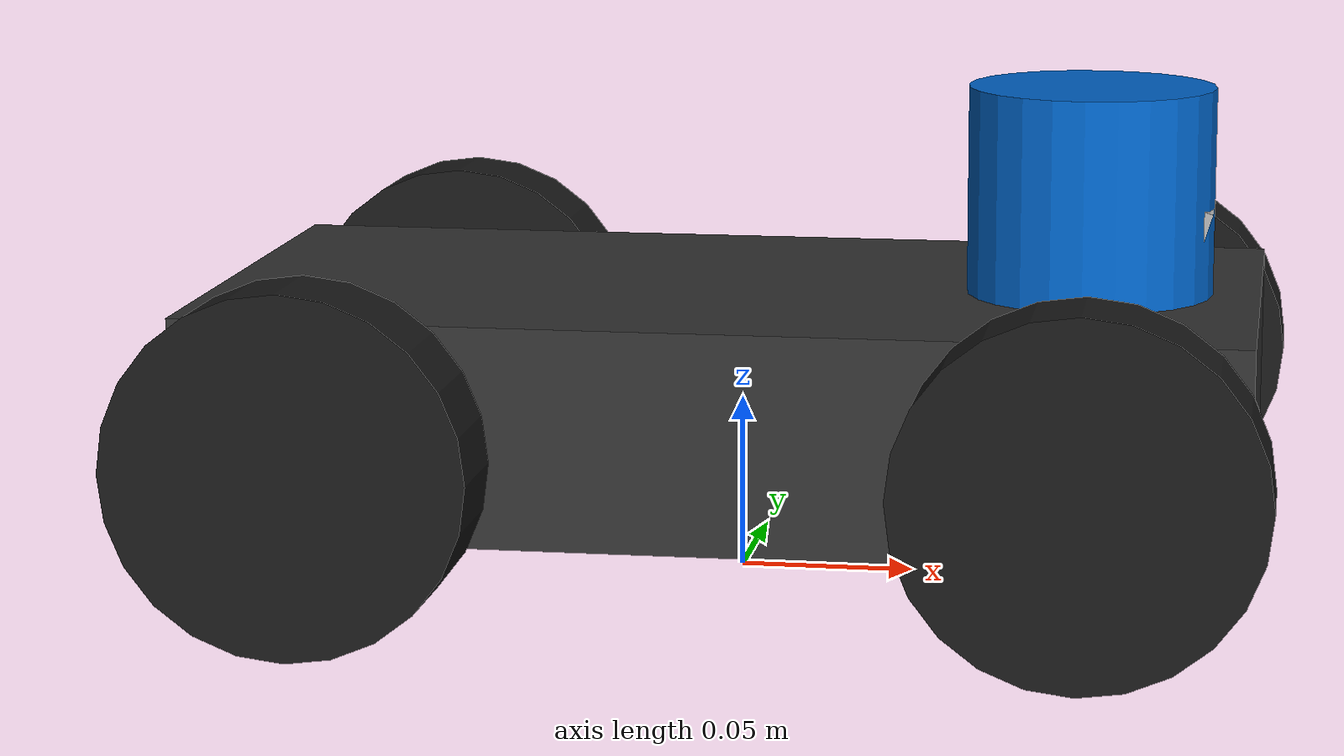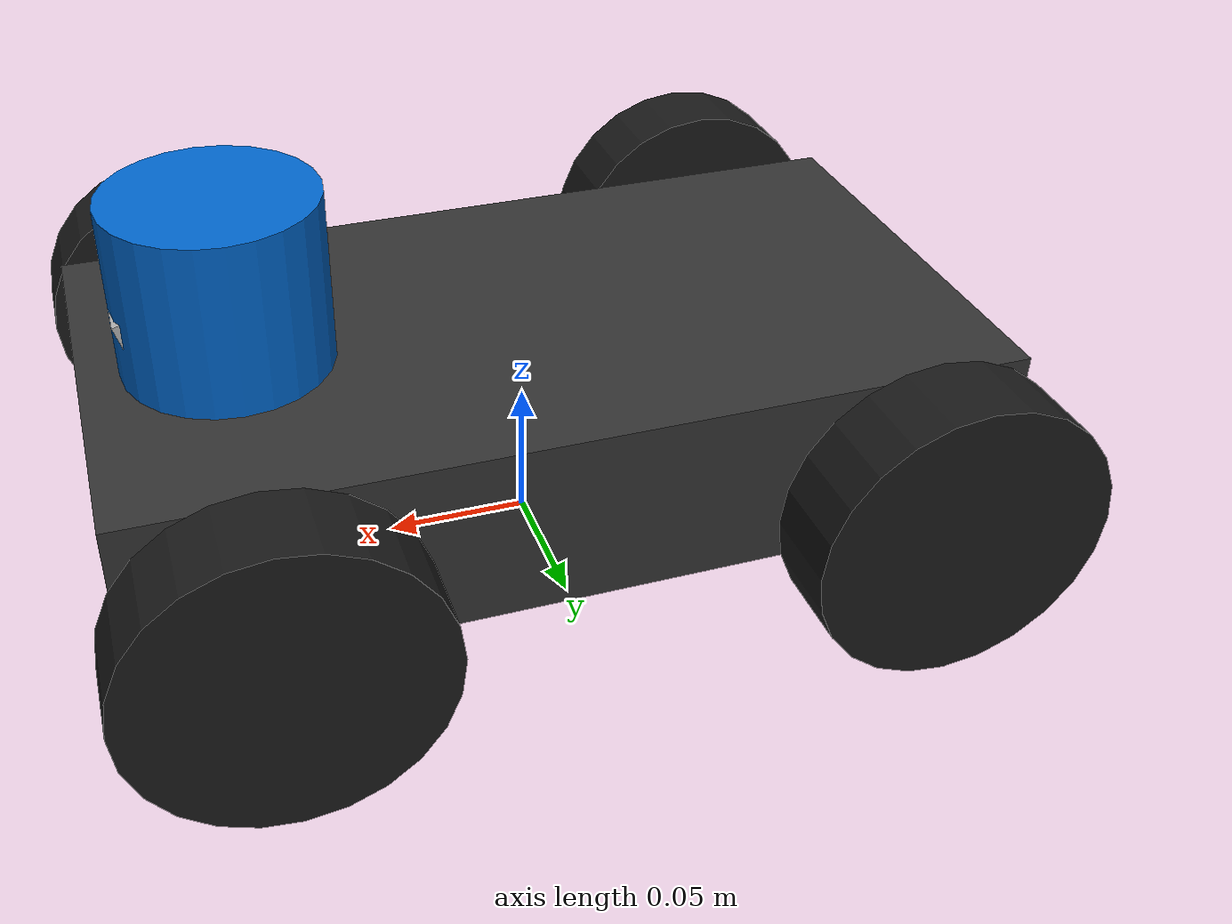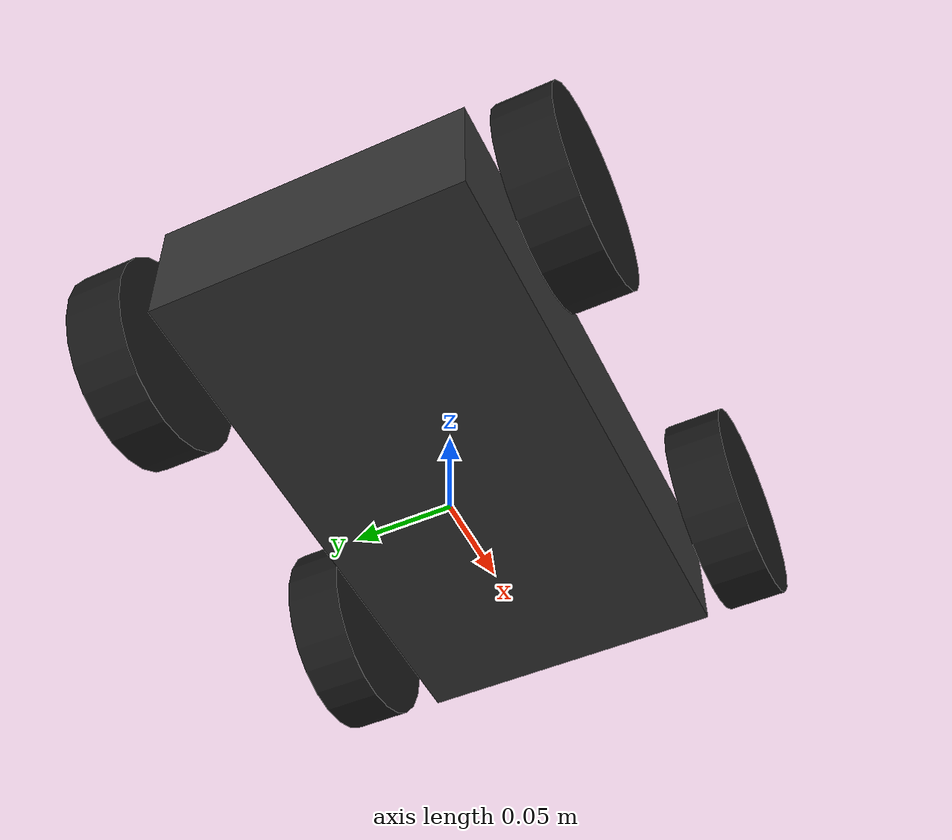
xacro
<?xml version="1.0"?>
<robot name="amr_ackermann" xmlns:xacro="http://www.ros.org/wiki/xacro">

  <xacro:include filename="$(find amr_description)/urdf/inertial_macros.xacro"/>
  <xacro:include filename="$(find amr_description)/urdf/amr_core.xacro"/>
  <xacro:include filename="$(find amr_description)/urdf/lidar.xacro"/>
  <xacro:include filename="$(find amr_description)/urdf/camera.xacro"/>
  <xacro:include filename="$(find amr_description)/urdf/ros2_control.xacro"/>

</robot>

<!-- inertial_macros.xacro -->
<robot xmlns:xacro="http://www.ros.org/wiki/xacro">

  <!-- Macro inertia hộp đặc: ixx=1/12m(w²+h²), iyy=1/12m(l²+h²), izz=1/12m(l²+w²) -->
  <xacro:macro name="inertial_box" params="mass l w h">
    <inertial>
      <mass value="${mass}"/>
      <inertia ixx="${(1/12.0)*mass*(w*w + h*h)}" ixy="0" ixz="0"
               iyy="${(1/12.0)*mass*(l*l + h*h)}" iyz="0"
               izz="${(1/12.0)*mass*(l*l + w*w)}"/>
    </inertial>
  </xacro:macro>

  <!-- Macro inertia trụ đặc, trục quay Y: iyy=½mr², ixx=izz=1/12m(3r²+h²) -->
  <xacro:macro name="inertial_cylinder" params="mass r h">
    <inertial>
      <mass value="${mass}"/>
      <inertia ixx="${(1/12.0)*mass*(3*r*r + h*h)}" ixy="0" ixz="0"
               iyy="${0.5*mass*r*r}"                 iyz="0"
               izz="${(1/12.0)*mass*(3*r*r + h*h)}"/>
    </inertial>
  </xacro:macro>

</robot>

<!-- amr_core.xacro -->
<robot xmlns:xacro="http://www.ros.org/wiki/xacro">

  <!-- ─── Tham số kích thước (đơn vị: mét) ─────────────────────── -->
  <!-- CẦN ĐIỀU CHỈNH theo kích thước khung xe thực tế -->
  <xacro:property name="base_length"      value="0.297"/> <!-- chiều dài chassis (không tính bánh) -->
  <xacro:property name="base_width"       value="0.158"/> <!-- chiều rộng khung chassis thật (không gồm bánh) -->
  <xacro:property name="base_height"      value="0.062"/> <!-- chiều cao chassis (không tính bánh) -->
  <xacro:property name="ground_clearance" value="0.022"/> <!-- mặt đất → mặt dưới khung gầm -->
  <xacro:property name="wheel_radius"     value="0.05"/>  <!-- bán kính bánh (đường kính 100mm → r=50mm) -->
  <xacro:property name="wheel_width"      value="0.029"/> <!-- bề rộng bánh -->
  <xacro:property name="wheelbase"        value="0.21"/>  <!-- khoảng cách trục trước-sau -->
  <xacro:property name="track_width"      value="0.217"/> <!-- khoảng cách 2 tâm bánh ngang (tâm→tâm) -->
  <!-- Khoảng trống lọt lòng giữa 2 mặt trong của 2 bánh (dẫn xuất) = 0.188m -->
  <xacro:property name="wheel_inner_gap"  value="${track_width - wheel_width}"/>
  <!-- z của base_link so với base_footprint = ground_clearance + chassis_height/2 = 0.053m -->
  <xacro:property name="base_link_z"      value="${ground_clearance + base_height/2}"/>

  <!-- ─── Materials ─────────────────────────────────────────────── -->
  <material name="dark_grey">
    <color rgba="0.2 0.2 0.2 1.0"/>
  </material>
  <material name="light_grey">
    <color rgba="0.7 0.7 0.7 1.0"/>
  </material>
  <material name="blue">
    <color rgba="0.0 0.4 0.8 1.0"/>
  </material>
  <material name="black">
    <color rgba="0.1 0.1 0.1 1.0"/>
  </material>

  <!-- ─── Base footprint ────────────────────────────────────────── -->
  <link name="base_footprint"/>

  <joint name="base_footprint_joint" type="fixed">
    <parent link="base_footprint"/>
    <child  link="base_link"/>
    <origin xyz="0 0 ${base_link_z}" rpy="0 0 0"/>
  </joint>

  <!-- ─── Base link (chassis) ───────────────────────────────────── -->
  <link name="base_link">
    <visual>
      <geometry>
        <box size="${base_length} ${base_width} ${base_height}"/>
      </geometry>
      <material name="dark_grey"/>
    </visual>
    <collision>
      <geometry>
        <box size="${base_length} ${base_width} ${base_height}"/>
      </geometry>
    </collision>
    <xacro:inertial_box mass="2.0" l="${base_length}" w="${base_width}" h="${base_height}"/>
  </link>

  <!-- ─── Wheel macro ───────────────────────────────────────────── -->
  <xacro:macro name="wheel" params="name x y mirrored">
    <link name="${name}_wheel">
      <visual>
        <geometry>
          <cylinder radius="${wheel_radius}" length="${wheel_width}"/>
        </geometry>
        <origin xyz="0 0 0" rpy="${pi/2} 0 0"/>
        <material name="black"/>
      </visual>
      <collision>
        <geometry>
          <cylinder radius="${wheel_radius}" length="${wheel_width}"/>
        </geometry>
        <origin xyz="0 0 0" rpy="${pi/2} 0 0"/>
      </collision>
      <xacro:inertial_cylinder mass="0.15" r="${wheel_radius}" h="${wheel_width}"/>
    </link>

    <joint name="${name}_wheel_joint" type="continuous">
      <parent link="base_link"/>
      <child  link="${name}_wheel"/>
      <!-- z = wheel_radius - base_link_z = 0.05 - 0.053 = -0.003m (tâm bánh hơi thấp hơn tâm chassis) -->
      <origin xyz="${x} ${y} ${wheel_radius - base_link_z}" rpy="0 0 0"/>
      <axis xyz="0 1 0"/>
    </joint>
  </xacro:macro>

  <!-- Bánh sau dẫn động (JGB37-520) -->
  <xacro:wheel name="rear_left"   x="${-wheelbase/2}" y="${track_width/2}"  mirrored="0"/>
  <xacro:wheel name="rear_right"  x="${-wheelbase/2}" y="${-track_width/2}" mirrored="1"/>

  <!-- Bánh trước lái (HTS-20H) — dùng fixed joint, servo tính riêng -->
  <xacro:wheel name="front_left"  x="${wheelbase/2}"  y="${track_width/2}"  mirrored="0"/>
  <xacro:wheel name="front_right" x="${wheelbase/2}"  y="${-track_width/2}" mirrored="1"/>

</robot>

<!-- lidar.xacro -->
<robot xmlns:xacro="http://www.ros.org/wiki/xacro">

  <!-- ─── LiDAR frame (RPLidar A1M8) ──────────────────────────── -->
  <!-- CẦN ĐIỀU CHỈNH vị trí gắn LiDAR trên xe thực tế -->
  <link name="laser_frame">
    <visual>
      <geometry>
        <cylinder radius="0.035" length="0.06"/>
      </geometry>
      <material name="blue"/>
    </visual>
  </link>

  <joint name="laser_joint" type="fixed">
    <parent link="base_link"/>
    <child  link="laser_frame"/>
    <!-- Điều chỉnh xyz theo vị trí thực tế của RPLidar trên xe -->
    <origin xyz="0.10 0 0.06" rpy="0 0 0"/>
  </joint>

</robot>

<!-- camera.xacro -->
<robot xmlns:xacro="http://www.ros.org/wiki/xacro">

  <!-- ─── Camera frame (IMX-219 CSI) ───────────────────────────── -->
  <!-- CẦN ĐIỀU CHỈNH vị trí gắn camera IMX-219 -->
  <link name="camera_frame">
    <visual>
      <geometry>
        <box size="0.025 0.025 0.020"/>
      </geometry>
      <material name="light_grey"/>
    </visual>
  </link>

  <joint name="camera_joint" type="fixed">
    <parent link="base_link"/>
    <child  link="camera_frame"/>
    <!-- camera thường gắn phía trước, hướng xuống hoặc thẳng -->
    <origin xyz="0.12 0 0.05" rpy="0 0.3 0"/>
  </joint>

  <!-- Frame optical (ROS convention: z-forward, x-right, y-down) -->
  <link name="camera_optical_frame"/>

  <joint name="camera_optical_joint" type="fixed">
    <parent link="camera_frame"/>
    <child  link="camera_optical_frame"/>
    <origin xyz="0 0 0" rpy="${-pi/2} 0 ${-pi/2}"/>
  </joint>

</robot>
